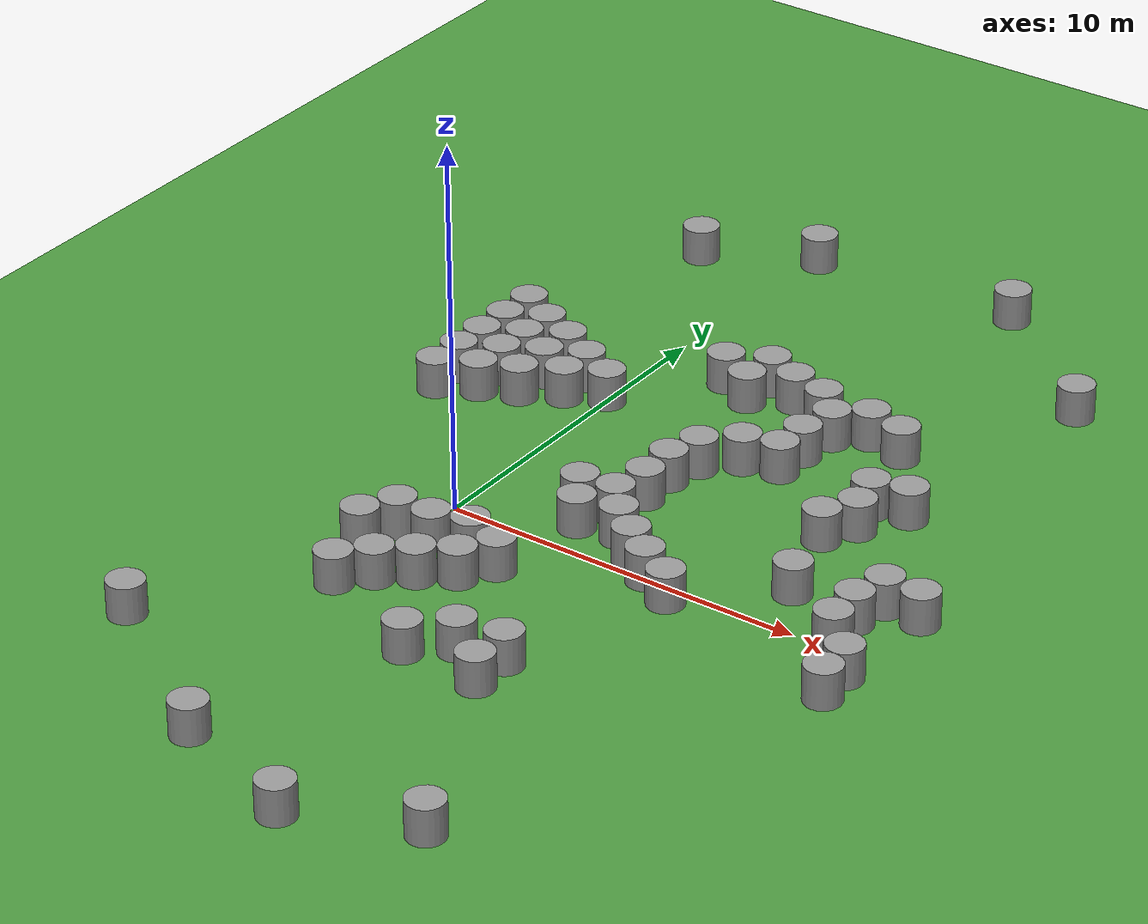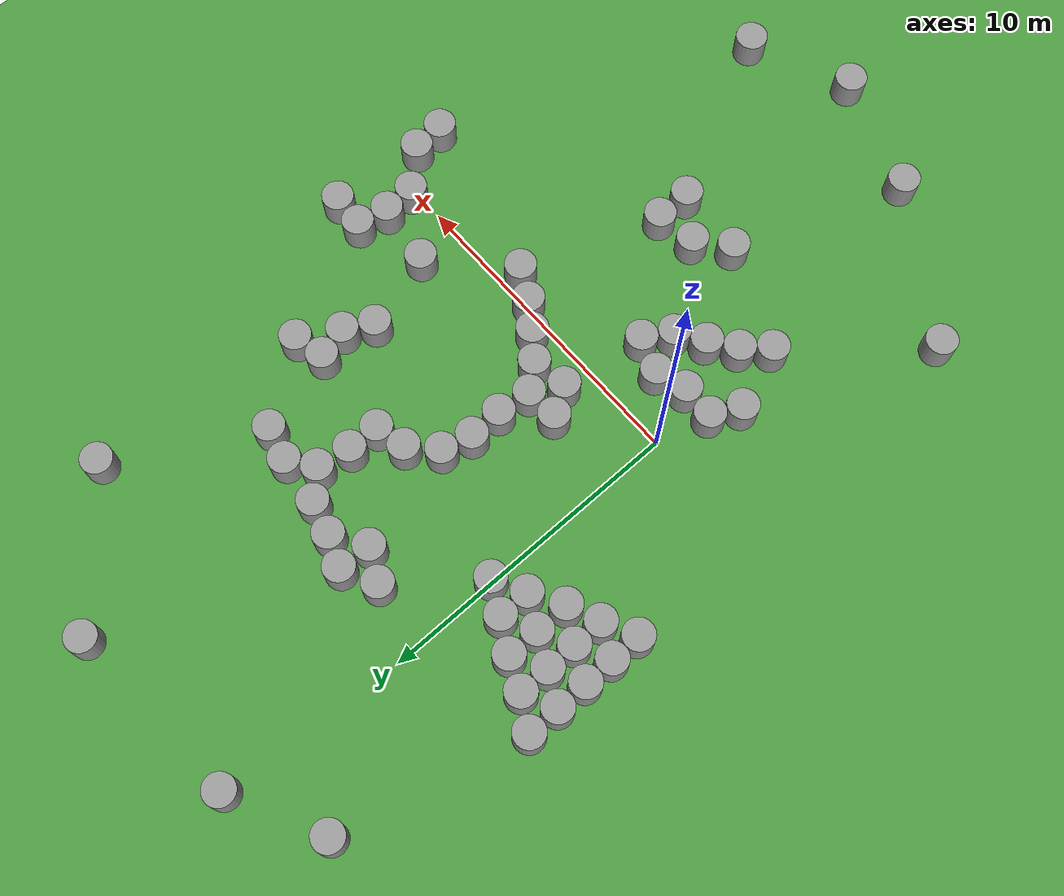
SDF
<sdf version="1.6">
 <world name="default">
  <light name="sun" type="directional">
   <pose>0 0 10 0 -0 0</pose>
   <diffuse>0.8 0.8 0.8 1</diffuse>
   <specular>0.1 0.1 0.1 1</specular>
   <attenuation>
    <range>1000</range>
    <constant>0.9</constant>
    <linear>0.01</linear>
    <quadratic>0.001</quadratic>
   </attenuation>
   <direction>-0.5 0.5 -1</direction>
  </light>
  <model name="grass">
   <static>1</static>
   <link name="link">
    <collision name="collision">
     <geometry><plane><normal>0 0 1</normal><size>100 100</size></plane></geometry>
     <surface><friction><ode><mu>100</mu><mu2>50</mu2></ode></friction></surface>
    </collision>
    <visual name="visual">
     <cast_shadows>0</cast_shadows>
     <geometry><plane><normal>0 0 1</normal><size>100 100</size></plane></geometry>
     <material>
      <script><uri>file://media/materials/scripts/gazebo.material</uri><name>Gazebo/Grass</name></script>
     </material>
    </visual>
   </link>
  </model>
  <gravity>0 0 -9.8</gravity>
  <magnetic_field>6e-06 2.3e-05 -4.2e-05</magnetic_field>
  <atmosphere type="adiabatic"/>
  <physics name="default_physics" default="0" type="ode">
   <max_step_size>0.001</max_step_size>
   <real_time_factor>1</real_time_factor>
   <real_time_update_rate>1000</real_time_update_rate>
  </physics>
  <scene><ambient>0.4 0.4 0.4 1</ambient><background>0.7 0.7 0.7 1</background><shadows>1</shadows></scene>
  <spherical_coordinates>
   <surface_model>EARTH_WGS84</surface_model>
   <latitude_deg>0</latitude_deg>
   <longitude_deg>0</longitude_deg>
   <elevation>0</elevation>
   <heading_deg>0</heading_deg>
  </spherical_coordinates>
  <model name="unit_cylinder_1_3">
   <pose>10.2391 12.7828 0.499994 -3e-06 -1e-06 -0</pose>
   <link name="link">
    <inertial>
     <mass>1</mass>
     <inertia><ixx>0.145833</ixx><ixy>0</ixy><ixz>0</ixz><iyy>0.145833</iyy><iyz>0</iyz><izz>0.125</izz></inertia>
    </inertial>
    <collision name="collision">
     <geometry><cylinder><radius>0.5</radius><length>1</length></cylinder></geometry>
    </collision>
    <visual name="visual">
     <geometry><cylinder><radius>0.5</radius><length>1</length></cylinder></geometry>
     <material>
      <script><name>Gazebo/Grey</name><uri>file://media/materials/scripts/gazebo.material</uri></script>
     </material>
    </visual>
   </link>
  </model>
  <model name="unit_cylinder_0_2">
   <pose>7.85382 -11.4229 0.499993 -3e-06 -1e-06 -0</pose>
   <link name="link">
    <inertial>
     <mass>1</mass>
     <inertia><ixx>0.145833</ixx><ixy>0</ixy><ixz>0</ixz><iyy>0.145833</iyy><iyz>0</iyz><izz>0.125</izz></inertia>
    </inertial>
    <collision name="collision">
     <geometry><cylinder><radius>0.5</radius><length>1</length></cylinder></geometry>
    </collision>
    <visual name="visual">
     <geometry><cylinder><radius>0.5</radius><length>1</length></cylinder></geometry>
     <material>
      <script><name>Gazebo/Grey</name><uri>file://media/materials/scripts/gazebo.material</uri></script>
     </material>
    </visual>
   </link>
  </model>
  <model name="unit_cylinder_0_4">
   <pose>4.68229 -12.7408 0.499993 -3e-06 -1e-06 -0</pose>
   <link name="link">
    <inertial>
     <mass>1</mass>
     <inertia><ixx>0.145833</ixx><ixy>0</ixy><ixz>0</ixz><iyy>0.145833</iyy><iyz>0</iyz><izz>0.125</izz></inertia>
    </inertial>
    <collision name="collision">
     <geometry><cylinder><radius>0.5</radius><length>1</length></cylinder></geometry>
    </collision>
    <visual name="visual">
     <geometry><cylinder><radius>0.5</radius><length>1</length></cylinder></geometry>
     <material>
      <script><name>Gazebo/Grey</name><uri>file://media/materials/scripts/gazebo.material</uri></script>
     </material>
    </visual>
   </link>
  </model>
  <model name="unit_cylinder_0_5">
   <pose>1.06773 -11.4194 0.499994 -3e-06 -1e-06 -0</pose>
   <link name="link">
    <inertial>
     <mass>1</mass>
     <inertia><ixx>0.145833</ixx><ixy>0</ixy><ixz>0</ixz><iyy>0.145833</iyy><iyz>0</iyz><izz>0.125</izz></inertia>
    </inertial>
    <collision name="collision">
     <geometry><cylinder><radius>0.5</radius><length>1</length></cylinder></geometry>
    </collision>
    <visual name="visual">
     <geometry><cylinder><radius>0.5</radius><length>1</length></cylinder></geometry>
     <material>
      <script><name>Gazebo/Grey</name><uri>file://media/materials/scripts/gazebo.material</uri></script>
     </material>
    </visual>
   </link>
  </model>
  <model name="unit_cylinder_0_7">
   <pose>-3.44572 -8.35825 0.499996 3e-06 1e-06 -0</pose>
   <link name="link">
    <inertial>
     <mass>1</mass>
     <inertia><ixx>0.145833</ixx><ixy>0</ixy><ixz>0</ixz><iyy>0.145833</iyy><iyz>0</iyz><izz>0.125</izz></inertia>
    </inertial>
    <collision name="collision">
     <geometry><cylinder><radius>0.5</radius><length>1</length></cylinder></geometry>
    </collision>
    <visual name="visual">
     <geometry><cylinder><radius>0.5</radius><length>1</length></cylinder></geometry>
     <material>
      <script><name>Gazebo/Grey</name><uri>file://media/materials/scripts/gazebo.material</uri></script>
     </material>
    </visual>
   </link>
  </model>
  <model name="unit_cylinder_0_8">
   <pose>6.29623 16.2223 0.499993 -3e-06 -1e-06 -0</pose>
   <link name="link">
    <inertial>
     <mass>1</mass>
     <inertia><ixx>0.145833</ixx><ixy>0</ixy><ixz>0</ixz><iyy>0.145833</iyy><iyz>0</iyz><izz>0.125</izz></inertia>
    </inertial>
    <collision name="collision">
     <geometry><cylinder><radius>0.5</radius><length>1</length></cylinder></geometry>
    </collision>
    <visual name="visual">
     <geometry><cylinder><radius>0.5</radius><length>1</length></cylinder></geometry>
     <material>
      <script><name>Gazebo/Grey</name><uri>file://media/materials/scripts/gazebo.material</uri></script>
     </material>
    </visual>
   </link>
  </model>
  <model name="unit_cylinder_0_9">
   <pose>0.398896 15.8958 0.499996 3e-06 1e-06 -0</pose>
   <link name="link">
    <inertial>
     <mass>1</mass>
     <inertia><ixx>0.145833</ixx><ixy>0</ixy><ixz>0</ixz><iyy>0.145833</iyy><iyz>0</iyz><izz>0.125</izz></inertia>
    </inertial>
    <collision name="collision">
     <geometry><cylinder><radius>0.5</radius><length>1</length></cylinder></geometry>
    </collision>
    <visual name="visual">
     <geometry><cylinder><radius>0.5</radius><length>1</length></cylinder></geometry>
     <material>
      <script><name>Gazebo/Grey</name><uri>file://media/materials/scripts/gazebo.material</uri></script>
     </material>
    </visual>
   </link>
  </model>
  <model name="unit_cylinder_0_10">
   <pose>-2.49771 14.4506 0.499993 -3e-06 -1e-06 -0</pose>
   <link name="link">
    <inertial>
     <mass>1</mass>
     <inertia><ixx>0.145833</ixx><ixy>0</ixy><ixz>0</ixz><iyy>0.145833</iyy><iyz>0</iyz><izz>0.125</izz></inertia>
    </inertial>
    <collision name="collision">
     <geometry><cylinder><radius>0.5</radius><length>1</length></cylinder></geometry>
    </collision>
    <visual name="visual">
     <geometry><cylinder><radius>0.5</radius><length>1</length></cylinder></geometry>
     <material>
      <script><name>Gazebo/Grey</name><uri>file://media/materials/scripts/gazebo.material</uri></script>
     </material>
    </visual>
   </link>
  </model>
  <model name="unit_cylinder_0">
   <pose>8.71509 4.82065 0.498373 0 -0 0.051073</pose>
   <link name="link">
    <inertial>
     <mass>1</mass>
     <inertia><ixx>0.145833</ixx><ixy>0</ixy><ixz>0</ixz><iyy>0.145833</iyy><iyz>0</iyz><izz>0.125</izz></inertia>
    </inertial>
    <collision name="collision">
     <geometry><cylinder><radius>0.5</radius><length>1</length></cylinder></geometry>
    </collision>
    <visual name="visual">
     <geometry><cylinder><radius>0.5</radius><length>1</length></cylinder></geometry>
     <material>
      <script><name>Gazebo/Grey</name><uri>file://media/materials/scripts/gazebo.material</uri></script>
     </material>
    </visual>
   </link>
  </model>
  <model name="unit_cylinder_1">
   <pose>8.47901 5.79238 0.499997 0 -1e-06 0.032311</pose>
   <link name="link">
    <inertial>
     <mass>1</mass>
     <inertia><ixx>0.145833</ixx><ixy>0</ixy><ixz>0</ixz><iyy>0.145833</iyy><iyz>0</iyz><izz>0.125</izz></inertia>
    </inertial>
    <collision name="collision">
     <geometry><cylinder><radius>0.5</radius><length>1</length></cylinder></geometry>
    </collision>
    <visual name="visual">
     <geometry><cylinder><radius>0.5</radius><length>1</length></cylinder></geometry>
     <material>
      <script><name>Gazebo/Grey</name><uri>file://media/materials/scripts/gazebo.material</uri></script>
     </material>
    </visual>
   </link>
  </model>
  <model name="unit_cylinder_2">
   <pose>8.24443 3.93833 0.499997 4e-06 3e-06 0.165016</pose>
   <link name="link">
    <inertial>
     <mass>1</mass>
     <inertia><ixx>0.145833</ixx><ixy>0</ixy><ixz>0</ixz><iyy>0.145833</iyy><iyz>0</iyz><izz>0.125</izz></inertia>
    </inertial>
    <collision name="collision">
     <geometry><cylinder><radius>0.5</radius><length>1</length></cylinder></geometry>
    </collision>
    <visual name="visual">
     <geometry><cylinder><radius>0.5</radius><length>1</length></cylinder></geometry>
     <material>
      <script><name>Gazebo/Grey</name><uri>file://media/materials/scripts/gazebo.material</uri></script>
     </material>
    </visual>
   </link>
  </model>
  <model name="unit_cylinder_5">
   <pose>12.2057 2.14074 0.499992 -3e-06 3e-06 -0.001128</pose>
   <link name="link">
    <inertial>
     <mass>1</mass>
     <inertia><ixx>0.145833</ixx><ixy>0</ixy><ixz>0</ixz><iyy>0.145833</iyy><iyz>0</iyz><izz>0.125</izz></inertia>
    </inertial>
    <collision name="collision">
     <geometry><cylinder><radius>0.5</radius><length>1</length></cylinder></geometry>
    </collision>
    <visual name="visual">
     <geometry><cylinder><radius>0.5</radius><length>1</length></cylinder></geometry>
     <material>
      <script><name>Gazebo/Grey</name><uri>file://media/materials/scripts/gazebo.material</uri></script>
     </material>
    </visual>
   </link>
  </model>
  <model name="unit_cylinder_6">
   <pose>11.1596 2.20515 0.499991 0 0 -0.379595</pose>
   <link name="link">
    <inertial>
     <mass>1</mass>
     <inertia><ixx>0.145833</ixx><ixy>0</ixy><ixz>0</ixz><iyy>0.145833</iyy><iyz>0</iyz><izz>0.125</izz></inertia>
    </inertial>
    <collision name="collision">
     <geometry><cylinder><radius>0.5</radius><length>1</length></cylinder></geometry>
    </collision>
    <visual name="visual">
     <geometry><cylinder><radius>0.5</radius><length>1</length></cylinder></geometry>
     <material>
      <script><name>Gazebo/Grey</name><uri>file://media/materials/scripts/gazebo.material</uri></script>
     </material>
    </visual>
   </link>
  </model>
  <model name="unit_cylinder_12">
   <pose>12.0582 -1.86424 0.499999 0 -0 0.010597</pose>
   <link name="link">
    <inertial>
     <mass>1</mass>
     <inertia><ixx>0.145833</ixx><ixy>0</ixy><ixz>0</ixz><iyy>0.145833</iyy><iyz>0</iyz><izz>0.125</izz></inertia>
    </inertial>
    <collision name="collision">
     <geometry><cylinder><radius>0.5</radius><length>1</length></cylinder></geometry>
    </collision>
    <visual name="visual">
     <geometry><cylinder><radius>0.5</radius><length>1</length></cylinder></geometry>
     <material>
      <script><name>Gazebo/Grey</name><uri>file://media/materials/scripts/gazebo.material</uri></script>
     </material>
    </visual>
   </link>
  </model>
  <model name="unit_cylinder_13">
   <pose>5.63819 6.03068 0.499993 4e-06 1e-06 -0.000711</pose>
   <link name="link">
    <inertial>
     <mass>1</mass>
     <inertia><ixx>0.145833</ixx><ixy>0</ixy><ixz>0</ixz><iyy>0.145833</iyy><iyz>0</iyz><izz>0.125</izz></inertia>
    </inertial>
    <collision name="collision">
     <geometry><cylinder><radius>0.5</radius><length>1</length></cylinder></geometry>
    </collision>
    <visual name="visual">
     <geometry><cylinder><radius>0.5</radius><length>1</length></cylinder></geometry>
     <material>
      <script><name>Gazebo/Grey</name><uri>file://media/materials/scripts/gazebo.material</uri></script>
     </material>
    </visual>
   </link>
  </model>
  <model name="unit_cylinder_14">
   <pose>4.66372 5.80588 0.499996 3e-06 1e-06 -0.007291</pose>
   <link name="link">
    <inertial>
     <mass>1</mass>
     <inertia><ixx>0.145833</ixx><ixy>0</ixy><ixz>0</ixz><iyy>0.145833</iyy><iyz>0</iyz><izz>0.125</izz></inertia>
    </inertial>
    <collision name="collision">
     <geometry><cylinder><radius>0.5</radius><length>1</length></cylinder></geometry>
    </collision>
    <visual name="visual">
     <geometry><cylinder><radius>0.5</radius><length>1</length></cylinder></geometry>
     <material>
      <script><name>Gazebo/Grey</name><uri>file://media/materials/scripts/gazebo.material</uri></script>
     </material>
    </visual>
   </link>
  </model>
  <model name="unit_cylinder_15">
   <pose>3.85507 5.05495 0.499994 3e-06 -1e-06 0.002581</pose>
   <link name="link">
    <inertial>
     <mass>1</mass>
     <inertia><ixx>0.145833</ixx><ixy>0</ixy><ixz>0</ixz><iyy>0.145833</iyy><iyz>0</iyz><izz>0.125</izz></inertia>
    </inertial>
    <collision name="collision">
     <geometry><cylinder><radius>0.5</radius><length>1</length></cylinder></geometry>
    </collision>
    <visual name="visual">
     <geometry><cylinder><radius>0.5</radius><length>1</length></cylinder></geometry>
     <material>
      <script><name>Gazebo/Grey</name><uri>file://media/materials/scripts/gazebo.material</uri></script>
     </material>
    </visual>
   </link>
  </model>
  <model name="unit_cylinder_16">
   <pose>3.60946 4.08432 0.499998 0 -0 0.004849</pose>
   <link name="link">
    <inertial>
     <mass>1</mass>
     <inertia><ixx>0.145833</ixx><ixy>0</ixy><ixz>0</ixz><iyy>0.145833</iyy><iyz>0</iyz><izz>0.125</izz></inertia>
    </inertial>
    <collision name="collision">
     <geometry><cylinder><radius>0.5</radius><length>1</length></cylinder></geometry>
    </collision>
    <visual name="visual">
     <geometry><cylinder><radius>0.5</radius><length>1</length></cylinder></geometry>
     <material>
      <script><name>Gazebo/Grey</name><uri>file://media/materials/scripts/gazebo.material</uri></script>
     </material>
    </visual>
   </link>
  </model>
  <model name="unit_cylinder_17">
   <pose>3.6333 3.02351 0.499996 3e-06 1e-06 -0</pose>
   <link name="link">
    <inertial>
     <mass>1</mass>
     <inertia><ixx>0.145833</ixx><ixy>0</ixy><ixz>0</ixz><iyy>0.145833</iyy><iyz>0</iyz><izz>0.125</izz></inertia>
    </inertial>
    <collision name="collision">
     <geometry><cylinder><radius>0.5</radius><length>1</length></cylinder></geometry>
    </collision>
    <visual name="visual">
     <geometry><cylinder><radius>0.5</radius><length>1</length></cylinder></geometry>
     <material>
      <script><name>Gazebo/Grey</name><uri>file://media/materials/scripts/gazebo.material</uri></script>
     </material>
    </visual>
   </link>
  </model>
  <model name="unit_cylinder_18">
   <pose>3.49543 1.94926 0.499996 3e-06 1e-06 0.000144</pose>
   <link name="link">
    <inertial>
     <mass>1</mass>
     <inertia><ixx>0.145833</ixx><ixy>0</ixy><ixz>0</ixz><iyy>0.145833</iyy><iyz>0</iyz><izz>0.125</izz></inertia>
    </inertial>
    <collision name="collision">
     <geometry><cylinder><radius>0.5</radius><length>1</length></cylinder></geometry>
    </collision>
    <visual name="visual">
     <geometry><cylinder><radius>0.5</radius><length>1</length></cylinder></geometry>
     <material>
      <script><name>Gazebo/Grey</name><uri>file://media/materials/scripts/gazebo.material</uri></script>
     </material>
    </visual>
   </link>
  </model>
  <model name="unit_cylinder_19">
   <pose>4.13556 1.18097 0.499996 3e-06 1e-06 0.000112</pose>
   <link name="link">
    <inertial>
     <mass>1</mass>
     <inertia><ixx>0.145833</ixx><ixy>0</ixy><ixz>0</ixz><iyy>0.145833</iyy><iyz>0</iyz><izz>0.125</izz></inertia>
    </inertial>
    <collision name="collision">
     <geometry><cylinder><radius>0.5</radius><length>1</length></cylinder></geometry>
    </collision>
    <visual name="visual">
     <geometry><cylinder><radius>0.5</radius><length>1</length></cylinder></geometry>
     <material>
      <script><name>Gazebo/Grey</name><uri>file://media/materials/scripts/gazebo.material</uri></script>
     </material>
    </visual>
   </link>
  </model>
  <model name="unit_cylinder_20">
   <pose>4.94391 0.55022 0.499992 -3e-06 3e-06 0.003409</pose>
   <link name="link">
    <inertial>
     <mass>1</mass>
     <inertia><ixx>0.145833</ixx><ixy>0</ixy><ixz>0</ixz><iyy>0.145833</iyy><iyz>0</iyz><izz>0.125</izz></inertia>
    </inertial>
    <collision name="collision">
     <geometry><cylinder><radius>0.5</radius><length>1</length></cylinder></geometry>
    </collision>
    <visual name="visual">
     <geometry><cylinder><radius>0.5</radius><length>1</length></cylinder></geometry>
     <material>
      <script><name>Gazebo/Grey</name><uri>file://media/materials/scripts/gazebo.material</uri></script>
     </material>
    </visual>
   </link>
  </model>
  <model name="unit_cylinder_21">
   <pose>5.76299 -0.025336 0.499996 3e-06 1e-06 -0.000726</pose>
   <link name="link">
    <inertial>
     <mass>1</mass>
     <inertia><ixx>0.145833</ixx><ixy>0</ixy><ixz>0</ixz><iyy>0.145833</iyy><iyz>0</iyz><izz>0.125</izz></inertia>
    </inertial>
    <collision name="collision">
     <geometry><cylinder><radius>0.5</radius><length>1</length></cylinder></geometry>
    </collision>
    <visual name="visual">
     <geometry><cylinder><radius>0.5</radius><length>1</length></cylinder></geometry>
     <material>
      <script><name>Gazebo/Grey</name><uri>file://media/materials/scripts/gazebo.material</uri></script>
     </material>
    </visual>
   </link>
  </model>
  <model name="unit_cylinder_22">
   <pose>5.66169 7.03043 0.499999 0 0 -0.001298</pose>
   <link name="link">
    <inertial>
     <mass>1</mass>
     <inertia><ixx>0.145833</ixx><ixy>0</ixy><ixz>0</ixz><iyy>0.145833</iyy><iyz>0</iyz><izz>0.125</izz></inertia>
    </inertial>
    <collision name="collision">
     <geometry><cylinder><radius>0.5</radius><length>1</length></cylinder></geometry>
    </collision>
    <visual name="visual">
     <geometry><cylinder><radius>0.5</radius><length>1</length></cylinder></geometry>
     <material>
      <script><name>Gazebo/Grey</name><uri>file://media/materials/scripts/gazebo.material</uri></script>
     </material>
    </visual>
   </link>
  </model>
  <model name="unit_cylinder_23">
   <pose>5.84101 8.09906 0.499991 0 0 -1.1e-05</pose>
   <link name="link">
    <inertial>
     <mass>1</mass>
     <inertia><ixx>0.145833</ixx><ixy>0</ixy><ixz>0</ixz><iyy>0.145833</iyy><iyz>0</iyz><izz>0.125</izz></inertia>
    </inertial>
    <collision name="collision">
     <geometry><cylinder><radius>0.5</radius><length>1</length></cylinder></geometry>
    </collision>
    <visual name="visual">
     <geometry><cylinder><radius>0.5</radius><length>1</length></cylinder></geometry>
     <material>
      <script><name>Gazebo/Grey</name><uri>file://media/materials/scripts/gazebo.material</uri></script>
     </material>
    </visual>
   </link>
  </model>
  <model name="unit_cylinder_24">
   <pose>6.65346 8.6821 0.499993 -3e-06 -1e-06 -4.9e-05</pose>
   <link name="link">
    <inertial>
     <mass>1</mass>
     <inertia><ixx>0.145833</ixx><ixy>0</ixy><ixz>0</ixz><iyy>0.145833</iyy><iyz>0</iyz><izz>0.125</izz></inertia>
    </inertial>
    <collision name="collision">
     <geometry><cylinder><radius>0.5</radius><length>1</length></cylinder></geometry>
    </collision>
    <visual name="visual">
     <geometry><cylinder><radius>0.5</radius><length>1</length></cylinder></geometry>
     <material>
      <script><name>Gazebo/Grey</name><uri>file://media/materials/scripts/gazebo.material</uri></script>
     </material>
    </visual>
   </link>
  </model>
  <model name="unit_cylinder_25">
   <pose>7.72017 8.39556 0.499995 -3e-06 1e-06 0.05273</pose>
   <link name="link">
    <inertial>
     <mass>1</mass>
     <inertia><ixx>0.145833</ixx><ixy>0</ixy><ixz>0</ixz><iyy>0.145833</iyy><iyz>0</iyz><izz>0.125</izz></inertia>
    </inertial>
    <collision name="collision">
     <geometry><cylinder><radius>0.5</radius><length>1</length></cylinder></geometry>
    </collision>
    <visual name="visual">
     <geometry><cylinder><radius>0.5</radius><length>1</length></cylinder></geometry>
     <material>
      <script><name>Gazebo/Grey</name><uri>file://media/materials/scripts/gazebo.material</uri></script>
     </material>
    </visual>
   </link>
  </model>
  <model name="unit_cylinder_26">
   <pose>5.10816 8.85534 0.499994 3e-06 -1e-06 0</pose>
   <link name="link">
    <inertial>
     <mass>1</mass>
     <inertia><ixx>0.145833</ixx><ixy>0</ixy><ixz>0</ixz><iyy>0.145833</iyy><iyz>0</iyz><izz>0.125</izz></inertia>
    </inertial>
    <collision name="collision">
     <geometry><cylinder><radius>0.5</radius><length>1</length></cylinder></geometry>
    </collision>
    <visual name="visual">
     <geometry><cylinder><radius>0.5</radius><length>1</length></cylinder></geometry>
     <material>
      <script><name>Gazebo/Grey</name><uri>file://media/materials/scripts/gazebo.material</uri></script>
     </material>
    </visual>
   </link>
  </model>
  <model name="unit_cylinder_27">
   <pose>2.4755 1.87082 0.499992 -3e-06 3e-06 0</pose>
   <link name="link">
    <inertial>
     <mass>1</mass>
     <inertia><ixx>0.145833</ixx><ixy>0</ixy><ixz>0</ixz><iyy>0.145833</iyy><iyz>0</iyz><izz>0.125</izz></inertia>
    </inertial>
    <collision name="collision">
     <geometry><cylinder><radius>0.5</radius><length>1</length></cylinder></geometry>
    </collision>
    <visual name="visual">
     <geometry><cylinder><radius>0.5</radius><length>1</length></cylinder></geometry>
     <material>
      <script><name>Gazebo/Grey</name><uri>file://media/materials/scripts/gazebo.material</uri></script>
     </material>
    </visual>
   </link>
  </model>
  <model name="unit_cylinder_30">
   <pose>4.05351 9.14024 0.499993 -3e-06 -1e-06 -0.007415</pose>
   <link name="link">
    <inertial>
     <mass>1</mass>
     <inertia><ixx>0.145833</ixx><ixy>0</ixy><ixz>0</ixz><iyy>0.145833</iyy><iyz>0</iyz><izz>0.125</izz></inertia>
    </inertial>
    <collision name="collision">
     <geometry><cylinder><radius>0.5</radius><length>1</length></cylinder></geometry>
    </collision>
    <visual name="visual">
     <geometry><cylinder><radius>0.5</radius><length>1</length></cylinder></geometry>
     <material>
      <script><name>Gazebo/Grey</name><uri>file://media/materials/scripts/gazebo.material</uri></script>
     </material>
    </visual>
   </link>
  </model>
  <model name="unit_cylinder_31">
   <pose>3.0865 9.53236 0.499994 -4e-06 -4e-06 0.028645</pose>
   <link name="link">
    <inertial>
     <mass>1</mass>
     <inertia><ixx>0.145833</ixx><ixy>0</ixy><ixz>0</ixz><iyy>0.145833</iyy><iyz>0</iyz><izz>0.125</izz></inertia>
    </inertial>
    <collision name="collision">
     <geometry><cylinder><radius>0.5</radius><length>1</length></cylinder></geometry>
    </collision>
    <visual name="visual">
     <geometry><cylinder><radius>0.5</radius><length>1</length></cylinder></geometry>
     <material>
      <script><name>Gazebo/Grey</name><uri>file://media/materials/scripts/gazebo.material</uri></script>
     </material>
    </visual>
   </link>
  </model>
  <model name="unit_cylinder_35">
   <pose>6.73436 -0.560265 0.499994 -4e-06 -4e-06 -0</pose>
   <link name="link">
    <inertial>
     <mass>1</mass>
     <inertia><ixx>0.145833</ixx><ixy>0</ixy><ixz>0</ixz><iyy>0.145833</iyy><iyz>0</iyz><izz>0.125</izz></inertia>
    </inertial>
    <collision name="collision">
     <geometry><cylinder><radius>0.5</radius><length>1</length></cylinder></geometry>
    </collision>
    <visual name="visual">
     <geometry><cylinder><radius>0.5</radius><length>1</length></cylinder></geometry>
     <material>
      <script><name>Gazebo/Grey</name><uri>file://media/materials/scripts/gazebo.material</uri></script>
     </material>
    </visual>
   </link>
  </model>
  <model name="unit_cylinder_7_0">
   <pose>10.9288 1.23137 0.499993 -3e-06 -0 0.218891</pose>
   <link name="link">
    <inertial>
     <mass>1</mass>
     <inertia><ixx>0.145833</ixx><ixy>0</ixy><ixz>0</ixz><iyy>0.145833</iyy><iyz>0</iyz><izz>0.125</izz></inertia>
    </inertial>
    <collision name="collision">
     <geometry><cylinder><radius>0.5</radius><length>1</length></cylinder></geometry>
    </collision>
    <visual name="visual">
     <geometry><cylinder><radius>0.5</radius><length>1</length></cylinder></geometry>
     <material>
      <script><name>Gazebo/Grey</name><uri>file://media/materials/scripts/gazebo.material</uri></script>
     </material>
    </visual>
   </link>
  </model>
  <model name="unit_cylinder_7_1">
   <pose>10.9758 0.230529 0.500429 -0.000192 0.000844 -0.161847</pose>
   <link name="link">
    <inertial>
     <mass>1</mass>
     <inertia><ixx>0.145833</ixx><ixy>0</ixy><ixz>0</ixz><iyy>0.145833</iyy><iyz>0</iyz><izz>0.125</izz></inertia>
    </inertial>
    <collision name="collision">
     <geometry><cylinder><radius>0.5</radius><length>1</length></cylinder></geometry>
    </collision>
    <visual name="visual">
     <geometry><cylinder><radius>0.5</radius><length>1</length></cylinder></geometry>
     <material>
      <script><name>Gazebo/Grey</name><uri>file://media/materials/scripts/gazebo.material</uri></script>
     </material>
    </visual>
   </link>
  </model>
  <model name="unit_cylinder_7_2">
   <pose>9.00969 1.497 0.501841 -0.002603 0.002623 -0.255148</pose>
   <link name="link">
    <inertial>
     <mass>1</mass>
     <inertia><ixx>0.145833</ixx><ixy>0</ixy><ixz>0</ixz><iyy>0.145833</iyy><iyz>0</iyz><izz>0.125</izz></inertia>
    </inertial>
    <collision name="collision">
     <geometry><cylinder><radius>0.5</radius><length>1</length></cylinder></geometry>
    </collision>
    <visual name="visual">
     <geometry><cylinder><radius>0.5</radius><length>1</length></cylinder></geometry>
     <material>
      <script><name>Gazebo/Grey</name><uri>file://media/materials/scripts/gazebo.material</uri></script>
     </material>
    </visual>
   </link>
  </model>
  <model name="unit_cylinder_7">
   <pose>11.9938 -0.861981 0.499994 -3e-06 -1e-06 -0.00906</pose>
   <link name="link">
    <inertial>
     <mass>1</mass>
     <inertia><ixx>0.145833</ixx><ixy>0</ixy><ixz>0</ixz><iyy>0.145833</iyy><iyz>0</iyz><izz>0.125</izz></inertia>
    </inertial>
    <collision name="collision">
     <geometry><cylinder><radius>0.5</radius><length>1</length></cylinder></geometry>
    </collision>
    <visual name="visual">
     <geometry><cylinder><radius>0.5</radius><length>1</length></cylinder></geometry>
     <material>
      <script><name>Gazebo/Grey</name><uri>file://media/materials/scripts/gazebo.material</uri></script>
     </material>
    </visual>
   </link>
  </model>
  <model name="unit_cylinder_8">
   <pose>9.45256 6.02629 0.499998 3e-06 -2e-06 -0.020485</pose>
   <link name="link">
    <inertial>
     <mass>1</mass>
     <inertia><ixx>0.145833</ixx><ixy>0</ixy><ixz>0</ixz><iyy>0.145833</iyy><iyz>0</iyz><izz>0.125</izz></inertia>
    </inertial>
    <collision name="collision">
     <geometry><cylinder><radius>0.5</radius><length>1</length></cylinder></geometry>
    </collision>
    <visual name="visual">
     <geometry><cylinder><radius>0.5</radius><length>1</length></cylinder></geometry>
     <material>
      <script><name>Gazebo/Grey</name><uri>file://media/materials/scripts/gazebo.material</uri></script>
     </material>
    </visual>
   </link>
  </model>
  <model name="unit_cylinder_3_0">
   <pose>5.20131 -6.06769 0.499995 -2e-06 -4e-06 -0.695455</pose>
   <link name="link">
    <inertial>
     <mass>1</mass>
     <inertia><ixx>0.145833</ixx><ixy>0</ixy><ixz>0</ixz><iyy>0.145833</iyy><iyz>0</iyz><izz>0.125</izz></inertia>
    </inertial>
    <collision name="collision">
     <geometry><cylinder><radius>0.5</radius><length>1</length></cylinder></geometry>
    </collision>
    <visual name="visual">
     <geometry><cylinder><radius>0.5</radius><length>1</length></cylinder></geometry>
     <material>
      <script><name>Gazebo/Grey</name><uri>file://media/materials/scripts/gazebo.material</uri></script>
     </material>
    </visual>
   </link>
  </model>
  <model name="unit_cylinder_3_1">
   <pose>5.19874 -4.93694 0.499994 -4e-06 -4e-06 -0</pose>
   <link name="link">
    <inertial>
     <mass>1</mass>
     <inertia><ixx>0.145833</ixx><ixy>0</ixy><ixz>0</ixz><iyy>0.145833</iyy><iyz>0</iyz><izz>0.125</izz></inertia>
    </inertial>
    <collision name="collision">
     <geometry><cylinder><radius>0.5</radius><length>1</length></cylinder></geometry>
    </collision>
    <visual name="visual">
     <geometry><cylinder><radius>0.5</radius><length>1</length></cylinder></geometry>
     <material>
      <script><name>Gazebo/Grey</name><uri>file://media/materials/scripts/gazebo.material</uri></script>
     </material>
    </visual>
   </link>
  </model>
  <model name="unit_cylinder_3_2">
   <pose>3.94358 -5.11927 0.499992 -3e-06 -4e-06 -0</pose>
   <link name="link">
    <inertial>
     <mass>1</mass>
     <inertia><ixx>0.145833</ixx><ixy>0</ixy><ixz>0</ixz><iyy>0.145833</iyy><iyz>0</iyz><izz>0.125</izz></inertia>
    </inertial>
    <collision name="collision">
     <geometry><cylinder><radius>0.5</radius><length>1</length></cylinder></geometry>
    </collision>
    <visual name="visual">
     <geometry><cylinder><radius>0.5</radius><length>1</length></cylinder></geometry>
     <material>
      <script><name>Gazebo/Grey</name><uri>file://media/materials/scripts/gazebo.material</uri></script>
     </material>
    </visual>
   </link>
  </model>
  <model name="unit_cylinder_3_3">
   <pose>2.9633 -5.92522 0.499997 3e-06 2e-06 0</pose>
   <link name="link">
    <inertial>
     <mass>1</mass>
     <inertia><ixx>0.145833</ixx><ixy>0</ixy><ixz>0</ixz><iyy>0.145833</iyy><iyz>0</iyz><izz>0.125</izz></inertia>
    </inertial>
    <collision name="collision">
     <geometry><cylinder><radius>0.5</radius><length>1</length></cylinder></geometry>
    </collision>
    <visual name="visual">
     <geometry><cylinder><radius>0.5</radius><length>1</length></cylinder></geometry>
     <material>
      <script><name>Gazebo/Grey</name><uri>file://media/materials/scripts/gazebo.material</uri></script>
     </material>
    </visual>
   </link>
  </model>
  <model name="unit_cylinder_3_4">
   <pose>2.59009 -1.74037 0.499994 -3e-06 -2e-06 0.006105</pose>
   <link name="link">
    <inertial>
     <mass>1</mass>
     <inertia><ixx>0.145833</ixx><ixy>0</ixy><ixz>0</ixz><iyy>0.145833</iyy><iyz>0</iyz><izz>0.125</izz></inertia>
    </inertial>
    <collision name="collision">
     <geometry><cylinder><radius>0.5</radius><length>1</length></cylinder></geometry>
    </collision>
    <visual name="visual">
     <geometry><cylinder><radius>0.5</radius><length>1</length></cylinder></geometry>
     <material>
      <script><name>Gazebo/Grey</name><uri>file://media/materials/scripts/gazebo.material</uri></script>
     </material>
    </visual>
   </link>
  </model>
  <model name="unit_cylinder_3_5">
   <pose>1.50815 -1.33866 0.499997 4e-06 3e-06 -0</pose>
   <link name="link">
    <inertial>
     <mass>1</mass>
     <inertia><ixx>0.145833</ixx><ixy>0</ixy><ixz>0</ixz><iyy>0.145833</iyy><iyz>0</iyz><izz>0.125</izz></inertia>
    </inertial>
    <collision name="collision">
     <geometry><cylinder><radius>0.5</radius><length>1</length></cylinder></geometry>
    </collision>
    <visual name="visual">
     <geometry><cylinder><radius>0.5</radius><length>1</length></cylinder></geometry>
     <material>
      <script><name>Gazebo/Grey</name><uri>file://media/materials/scripts/gazebo.material</uri></script>
     </material>
    </visual>
   </link>
  </model>
  <model name="unit_cylinder_3_6">
   <pose>0.517674 -1.62066 0.499997 3e-06 2e-06 0</pose>
   <link name="link">
    <inertial>
     <mass>1</mass>
     <inertia><ixx>0.145833</ixx><ixy>0</ixy><ixz>0</ixz><iyy>0.145833</iyy><iyz>0</iyz><izz>0.125</izz></inertia>
    </inertial>
    <collision name="collision">
     <geometry><cylinder><radius>0.5</radius><length>1</length></cylinder></geometry>
    </collision>
    <visual name="visual">
     <geometry><cylinder><radius>0.5</radius><length>1</length></cylinder></geometry>
     <material>
      <script><name>Gazebo/Grey</name><uri>file://media/materials/scripts/gazebo.material</uri></script>
     </material>
    </visual>
   </link>
  </model>
  <model name="unit_cylinder_3_7">
   <pose>2.06536 -2.59523 0.499994 -3e-06 -2e-06 0.005311</pose>
   <link name="link">
    <inertial>
     <mass>1</mass>
     <inertia><ixx>0.145833</ixx><ixy>0</ixy><ixz>0</ixz><iyy>0.145833</iyy><iyz>0</iyz><izz>0.125</izz></inertia>
    </inertial>
    <collision name="collision">
     <geometry><cylinder><radius>0.5</radius><length>1</length></cylinder></geometry>
    </collision>
    <visual name="visual">
     <geometry><cylinder><radius>0.5</radius><length>1</length></cylinder></geometry>
     <material>
      <script><name>Gazebo/Grey</name><uri>file://media/materials/scripts/gazebo.material</uri></script>
     </material>
    </visual>
   </link>
  </model>
  <model name="unit_cylinder_3_8">
   <pose>1.22171 -3.13699 0.499994 -3e-06 -3e-06 -0.018873</pose>
   <link name="link">
    <inertial>
     <mass>1</mass>
     <inertia><ixx>0.145833</ixx><ixy>0</ixy><ixz>0</ixz><iyy>0.145833</iyy><iyz>0</iyz><izz>0.125</izz></inertia>
    </inertial>
    <collision name="collision">
     <geometry><cylinder><radius>0.5</radius><length>1</length></cylinder></geometry>
    </collision>
    <visual name="visual">
     <geometry><cylinder><radius>0.5</radius><length>1</length></cylinder></geometry>
     <material>
      <script><name>Gazebo/Grey</name><uri>file://media/materials/scripts/gazebo.material</uri></script>
     </material>
    </visual>
   </link>
  </model>
  <model name="unit_cylinder_3_9">
   <pose>0.407043 -3.71694 0.499994 -4e-06 -3e-06 0.029727</pose>
   <link name="link">
    <inertial>
     <mass>1</mass>
     <inertia><ixx>0.145833</ixx><ixy>0</ixy><ixz>0</ixz><iyy>0.145833</iyy><iyz>0</iyz><izz>0.125</izz></inertia>
    </inertial>
    <collision name="collision">
     <geometry><cylinder><radius>0.5</radius><length>1</length></cylinder></geometry>
    </collision>
    <visual name="visual">
     <geometry><cylinder><radius>0.5</radius><length>1</length></cylinder></geometry>
     <material>
      <script><name>Gazebo/Grey</name><uri>file://media/materials/scripts/gazebo.material</uri></script>
     </material>
    </visual>
   </link>
  </model>
  <model name="unit_cylinder_3_10">
   <pose>-0.531728 -1.58914 0.499992 -3e-06 2e-06 0</pose>
   <link name="link">
    <inertial>
     <mass>1</mass>
     <inertia><ixx>0.145833</ixx><ixy>0</ixy><ixz>0</ixz><iyy>0.145833</iyy><iyz>0</iyz><izz>0.125</izz></inertia>
    </inertial>
    <collision name="collision">
     <geometry><cylinder><radius>0.5</radius><length>1</length></cylinder></geometry>
    </collision>
    <visual name="visual">
     <geometry><cylinder><radius>0.5</radius><length>1</length></cylinder></geometry>
     <material>
      <script><name>Gazebo/Grey</name><uri>file://media/materials/scripts/gazebo.material</uri></script>
     </material>
    </visual>
   </link>
  </model>
  <model name="unit_cylinder_3_11">
   <pose>-0.259923 -4.46235 0.499997 3e-06 1e-06 0.033185</pose>
   <link name="link">
    <inertial>
     <mass>1</mass>
     <inertia><ixx>0.145833</ixx><ixy>0</ixy><ixz>0</ixz><iyy>0.145833</iyy><iyz>0</iyz><izz>0.125</izz></inertia>
    </inertial>
    <collision name="collision">
     <geometry><cylinder><radius>0.5</radius><length>1</length></cylinder></geometry>
    </collision>
    <visual name="visual">
     <geometry><cylinder><radius>0.5</radius><length>1</length></cylinder></geometry>
     <material>
      <script><name>Gazebo/Grey</name><uri>file://media/materials/scripts/gazebo.material</uri></script>
     </material>
    </visual>
   </link>
  </model>
  <model name="unit_cylinder_3">
   <pose>-1 6 0.499998 3e-06 -2e-06 0</pose>
   <link name="link">
    <inertial>
     <mass>1</mass>
     <inertia><ixx>0.145833</ixx><ixy>0</ixy><ixz>0</ixz><iyy>0.145833</iyy><iyz>0</iyz><izz>0.125</izz></inertia>
    </inertial>
    <collision name="collision">
     <geometry><cylinder><radius>0.5</radius><length>1</length></cylinder></geometry>
    </collision>
    <visual name="visual">
     <geometry><cylinder><radius>0.5</radius><length>1</length></cylinder></geometry>
     <material>
      <script><name>Gazebo/Grey</name><uri>file://media/materials/scripts/gazebo.material</uri></script>
     </material>
    </visual>
   </link>
  </model>
  <model name="unit_cylinder_4">
   <pose>-1e-06 6.49193 0.499998 3e-06 -2e-06 0</pose>
   <link name="link">
    <inertial>
     <mass>1</mass>
     <inertia><ixx>0.145833</ixx><ixy>0</ixy><ixz>0</ixz><iyy>0.145833</iyy><iyz>0</iyz><izz>0.125</izz></inertia>
    </inertial>
    <collision name="collision">
     <geometry><cylinder><radius>0.5</radius><length>1</length></cylinder></geometry>
    </collision>
    <visual name="visual">
     <geometry><cylinder><radius>0.5</radius><length>1</length></cylinder></geometry>
     <material>
      <script><name>Gazebo/Grey</name><uri>file://media/materials/scripts/gazebo.material</uri></script>
     </material>
    </visual>
   </link>
  </model>
  <model name="unit_cylinder_9">
   <pose>-1 7 0.499991 0 -0 8e-06</pose>
   <link name="link">
    <inertial>
     <mass>1</mass>
     <inertia><ixx>0.145833</ixx><ixy>0</ixy><ixz>0</ixz><iyy>0.145833</iyy><iyz>0</iyz><izz>0.125</izz></inertia>
    </inertial>
    <collision name="collision">
     <geometry><cylinder><radius>0.5</radius><length>1</length></cylinder></geometry>
    </collision>
    <visual name="visual">
     <geometry><cylinder><radius>0.5</radius><length>1</length></cylinder></geometry>
     <material>
      <script><name>Gazebo/Grey</name><uri>file://media/materials/scripts/gazebo.material</uri></script>
     </material>
    </visual>
   </link>
  </model>
  <model name="unit_cylinder_10">
   <pose>-2 7.5588 0.499998 3e-06 -2e-06 0</pose>
   <link name="link">
    <inertial>
     <mass>1</mass>
     <inertia><ixx>0.145833</ixx><ixy>0</ixy><ixz>0</ixz><iyy>0.145833</iyy><iyz>0</iyz><izz>0.125</izz></inertia>
    </inertial>
    <collision name="collision">
     <geometry><cylinder><radius>0.5</radius><length>1</length></cylinder></geometry>
    </collision>
    <visual name="visual">
     <geometry><cylinder><radius>0.5</radius><length>1</length></cylinder></geometry>
     <material>
      <script><name>Gazebo/Grey</name><uri>file://media/materials/scripts/gazebo.material</uri></script>
     </material>
    </visual>
   </link>
  </model>
  <model name="unit_cylinder_11">
   <pose>-2 6.51052 0.499998 3e-06 -2e-06 0</pose>
   <link name="link">
    <inertial>
     <mass>1</mass>
     <inertia><ixx>0.145833</ixx><ixy>0</ixy><ixz>0</ixz><iyy>0.145833</iyy><iyz>0</iyz><izz>0.125</izz></inertia>
    </inertial>
    <collision name="collision">
     <geometry><cylinder><radius>0.5</radius><length>1</length></cylinder></geometry>
    </collision>
    <visual name="visual">
     <geometry><cylinder><radius>0.5</radius><length>1</length></cylinder></geometry>
     <material>
      <script><name>Gazebo/Grey</name><uri>file://media/materials/scripts/gazebo.material</uri></script>
     </material>
    </visual>
   </link>
  </model>
  <model name="unit_cylinder_28">
   <pose>-2 5.40673 0.499993 -3e-06 3e-06 0</pose>
   <link name="link">
    <inertial>
     <mass>1</mass>
     <inertia><ixx>0.145833</ixx><ixy>0</ixy><ixz>0</ixz><iyy>0.145833</iyy><iyz>0</iyz><izz>0.125</izz></inertia>
    </inertial>
    <collision name="collision">
     <geometry><cylinder><radius>0.5</radius><length>1</length></cylinder></geometry>
    </collision>
    <visual name="visual">
     <geometry><cylinder><radius>0.5</radius><length>1</length></cylinder></geometry>
     <material>
      <script><name>Gazebo/Grey</name><uri>file://media/materials/scripts/gazebo.material</uri></script>
     </material>
    </visual>
   </link>
  </model>
  <model name="unit_cylinder_29">
   <pose>-3 8 0.499993 4e-06 -1e-06 1e-06</pose>
   <link name="link">
    <inertial>
     <mass>1</mass>
     <inertia><ixx>0.145833</ixx><ixy>0</ixy><ixz>0</ixz><iyy>0.145833</iyy><iyz>0</iyz><izz>0.125</izz></inertia>
    </inertial>
    <collision name="collision">
     <geometry><cylinder><radius>0.5</radius><length>1</length></cylinder></geometry>
    </collision>
    <visual name="visual">
     <geometry><cylinder><radius>0.5</radius><length>1</length></cylinder></geometry>
     <material>
      <script><name>Gazebo/Grey</name><uri>file://media/materials/scripts/gazebo.material</uri></script>
     </material>
    </visual>
   </link>
  </model>
  <model name="unit_cylinder_33">
   <pose>-3 7 0.5 0 0 -5e-06</pose>
   <link name="link">
    <inertial>
     <mass>1</mass>
     <inertia><ixx>0.145833</ixx><ixy>0</ixy><ixz>0</ixz><iyy>0.145833</iyy><iyz>0</iyz><izz>0.125</izz></inertia>
    </inertial>
    <collision name="collision">
     <geometry><cylinder><radius>0.5</radius><length>1</length></cylinder></geometry>
    </collision>
    <visual name="visual">
     <geometry><cylinder><radius>0.5</radius><length>1</length></cylinder></geometry>
     <material>
      <script><name>Gazebo/Grey</name><uri>file://media/materials/scripts/gazebo.material</uri></script>
     </material>
    </visual>
   </link>
  </model>
  <model name="unit_cylinder_34">
   <pose>-3 6 0.5 0 -0 3e-06</pose>
   <link name="link">
    <inertial>
     <mass>1</mass>
     <inertia><ixx>0.145833</ixx><ixy>0</ixy><ixz>0</ixz><iyy>0.145833</iyy><iyz>0</iyz><izz>0.125</izz></inertia>
    </inertial>
    <collision name="collision">
     <geometry><cylinder><radius>0.5</radius><length>1</length></cylinder></geometry>
    </collision>
    <visual name="visual">
     <geometry><cylinder><radius>0.5</radius><length>1</length></cylinder></geometry>
     <material>
      <script><name>Gazebo/Grey</name><uri>file://media/materials/scripts/gazebo.material</uri></script>
     </material>
    </visual>
   </link>
  </model>
  <model name="unit_cylinder_36">
   <pose>-3 5 0.5 0 -0 1e-06</pose>
   <link name="link">
    <inertial>
     <mass>1</mass>
     <inertia><ixx>0.145833</ixx><ixy>0</ixy><ixz>0</ixz><iyy>0.145833</iyy><iyz>0</iyz><izz>0.125</izz></inertia>
    </inertial>
    <collision name="collision">
     <geometry><cylinder><radius>0.5</radius><length>1</length></cylinder></geometry>
    </collision>
    <visual name="visual">
     <geometry><cylinder><radius>0.5</radius><length>1</length></cylinder></geometry>
     <material>
      <script><name>Gazebo/Grey</name><uri>file://media/materials/scripts/gazebo.material</uri></script>
     </material>
    </visual>
   </link>
  </model>
  <model name="unit_cylinder_37">
   <pose>-4 8.57222 0.499992 -3e-06 3e-06 0</pose>
   <link name="link">
    <inertial>
     <mass>1</mass>
     <inertia><ixx>0.145833</ixx><ixy>0</ixy><ixz>0</ixz><iyy>0.145833</iyy><iyz>0</iyz><izz>0.125</izz></inertia>
    </inertial>
    <collision name="collision">
     <geometry><cylinder><radius>0.5</radius><length>1</length></cylinder></geometry>
    </collision>
    <visual name="visual">
     <geometry><cylinder><radius>0.5</radius><length>1</length></cylinder></geometry>
     <material>
      <script><name>Gazebo/Grey</name><uri>file://media/materials/scripts/gazebo.material</uri></script>
     </material>
    </visual>
   </link>
  </model>
  <model name="unit_cylinder_38">
   <pose>-4 7.5177 0.499998 3e-06 -3e-06 0</pose>
   <link name="link">
    <inertial>
     <mass>1</mass>
     <inertia><ixx>0.145833</ixx><ixy>0</ixy><ixz>0</ixz><iyy>0.145833</iyy><iyz>0</iyz><izz>0.125</izz></inertia>
    </inertial>
    <collision name="collision">
     <geometry><cylinder><radius>0.5</radius><length>1</length></cylinder></geometry>
    </collision>
    <visual name="visual">
     <geometry><cylinder><radius>0.5</radius><length>1</length></cylinder></geometry>
     <material>
      <script><name>Gazebo/Grey</name><uri>file://media/materials/scripts/gazebo.material</uri></script>
     </material>
    </visual>
   </link>
  </model>
  <model name="unit_cylinder_39">
   <pose>-4 6.48336 0.499991 -2e-06 -2e-06 6.9e-05</pose>
   <link name="link">
    <inertial>
     <mass>1</mass>
     <inertia><ixx>0.145833</ixx><ixy>0</ixy><ixz>0</ixz><iyy>0.145833</iyy><iyz>0</iyz><izz>0.125</izz></inertia>
    </inertial>
    <collision name="collision">
     <geometry><cylinder><radius>0.5</radius><length>1</length></cylinder></geometry>
    </collision>
    <visual name="visual">
     <geometry><cylinder><radius>0.5</radius><length>1</length></cylinder></geometry>
     <material>
      <script><name>Gazebo/Grey</name><uri>file://media/materials/scripts/gazebo.material</uri></script>
     </material>
    </visual>
   </link>
  </model>
  <model name="unit_cylinder_40">
   <pose>-4.00007 5.48334 0.499993 -3e-06 4e-06 0.000252</pose>
   <link name="link">
    <inertial>
     <mass>1</mass>
     <inertia><ixx>0.145833</ixx><ixy>0</ixy><ixz>0</ixz><iyy>0.145833</iyy><iyz>0</iyz><izz>0.125</izz></inertia>
    </inertial>
    <collision name="collision">
     <geometry><cylinder><radius>0.5</radius><length>1</length></cylinder></geometry>
    </collision>
    <visual name="visual">
     <geometry><cylinder><radius>0.5</radius><length>1</length></cylinder></geometry>
     <material>
      <script><name>Gazebo/Grey</name><uri>file://media/materials/scripts/gazebo.material</uri></script>
     </material>
    </visual>
   </link>
  </model>
  <model name="unit_cylinder_41">
   <pose>-3.9997 4.48333 0.499995 3e-06 -3e-06 0.000654</pose>
   <link name="link">
    <inertial>
     <mass>1</mass>
     <inertia><ixx>0.145833</ixx><ixy>0</ixy><ixz>0</ixz><iyy>0.145833</iyy><iyz>0</iyz><izz>0.125</izz></inertia>
    </inertial>
    <collision name="collision">
     <geometry><cylinder><radius>0.5</radius><length>1</length></cylinder></geometry>
    </collision>
    <visual name="visual">
     <geometry><cylinder><radius>0.5</radius><length>1</length></cylinder></geometry>
     <material>
      <script><name>Gazebo/Grey</name><uri>file://media/materials/scripts/gazebo.material</uri></script>
     </material>
    </visual>
   </link>
  </model>
  <model name="unit_cylinder_32_0">
   <pose>2.998 8.48635 0.499994 -4e-06 -3e-06 0.010097</pose>
   <link name="link">
    <inertial>
     <mass>1</mass>
     <inertia><ixx>0.145833</ixx><ixy>0</ixy><ixz>0</ixz><iyy>0.145833</iyy><iyz>0</iyz><izz>0.125</izz></inertia>
    </inertial>
    <collision name="collision">
     <geometry><cylinder><radius>0.5</radius><length>1</length></cylinder></geometry>
    </collision>
    <visual name="visual">
     <geometry><cylinder><radius>0.5</radius><length>1</length></cylinder></geometry>
     <material>
      <script><name>Gazebo/Grey</name><uri>file://media/materials/scripts/gazebo.material</uri></script>
     </material>
    </visual>
   </link>
  </model>
  <model name="unit_cylinder_32_1">
   <pose>2 9 0.499997 3e-06 4e-06 -0</pose>
   <link name="link">
    <inertial>
     <mass>1</mass>
     <inertia><ixx>0.145833</ixx><ixy>0</ixy><ixz>0</ixz><iyy>0.145833</iyy><iyz>0</iyz><izz>0.125</izz></inertia>
    </inertial>
    <collision name="collision">
     <geometry><cylinder><radius>0.5</radius><length>1</length></cylinder></geometry>
    </collision>
    <visual name="visual">
     <geometry><cylinder><radius>0.5</radius><length>1</length></cylinder></geometry>
     <material>
      <script><name>Gazebo/Grey</name><uri>file://media/materials/scripts/gazebo.material</uri></script>
     </material>
    </visual>
   </link>
  </model>
  <model name="unit_cylinder_32_2">
   <pose>3 1 0.499993 -3e-06 -4e-06 -0</pose>
   <link name="link">
    <inertial>
     <mass>1</mass>
     <inertia><ixx>0.145833</ixx><ixy>0</ixy><ixz>0</ixz><iyy>0.145833</iyy><iyz>0</iyz><izz>0.125</izz></inertia>
    </inertial>
    <collision name="collision">
     <geometry><cylinder><radius>0.5</radius><length>1</length></cylinder></geometry>
    </collision>
    <visual name="visual">
     <geometry><cylinder><radius>0.5</radius><length>1</length></cylinder></geometry>
     <material>
      <script><name>Gazebo/Grey</name><uri>file://media/materials/scripts/gazebo.material</uri></script>
     </material>
    </visual>
   </link>
  </model>
  <model name="unit_cylinder_32_3">
   <pose>-0.999998 -2.48757 0.499997 3e-06 4e-06 -0</pose>
   <link name="link">
    <inertial>
     <mass>1</mass>
     <inertia><ixx>0.145833</ixx><ixy>0</ixy><ixz>0</ixz><iyy>0.145833</iyy><iyz>0</iyz><izz>0.125</izz></inertia>
    </inertial>
    <collision name="collision">
     <geometry><cylinder><radius>0.5</radius><length>1</length></cylinder></geometry>
    </collision>
    <visual name="visual">
     <geometry><cylinder><radius>0.5</radius><length>1</length></cylinder></geometry>
     <material>
      <script><name>Gazebo/Grey</name><uri>file://media/materials/scripts/gazebo.material</uri></script>
     </material>
    </visual>
   </link>
  </model>
 </world>
</sdf>
